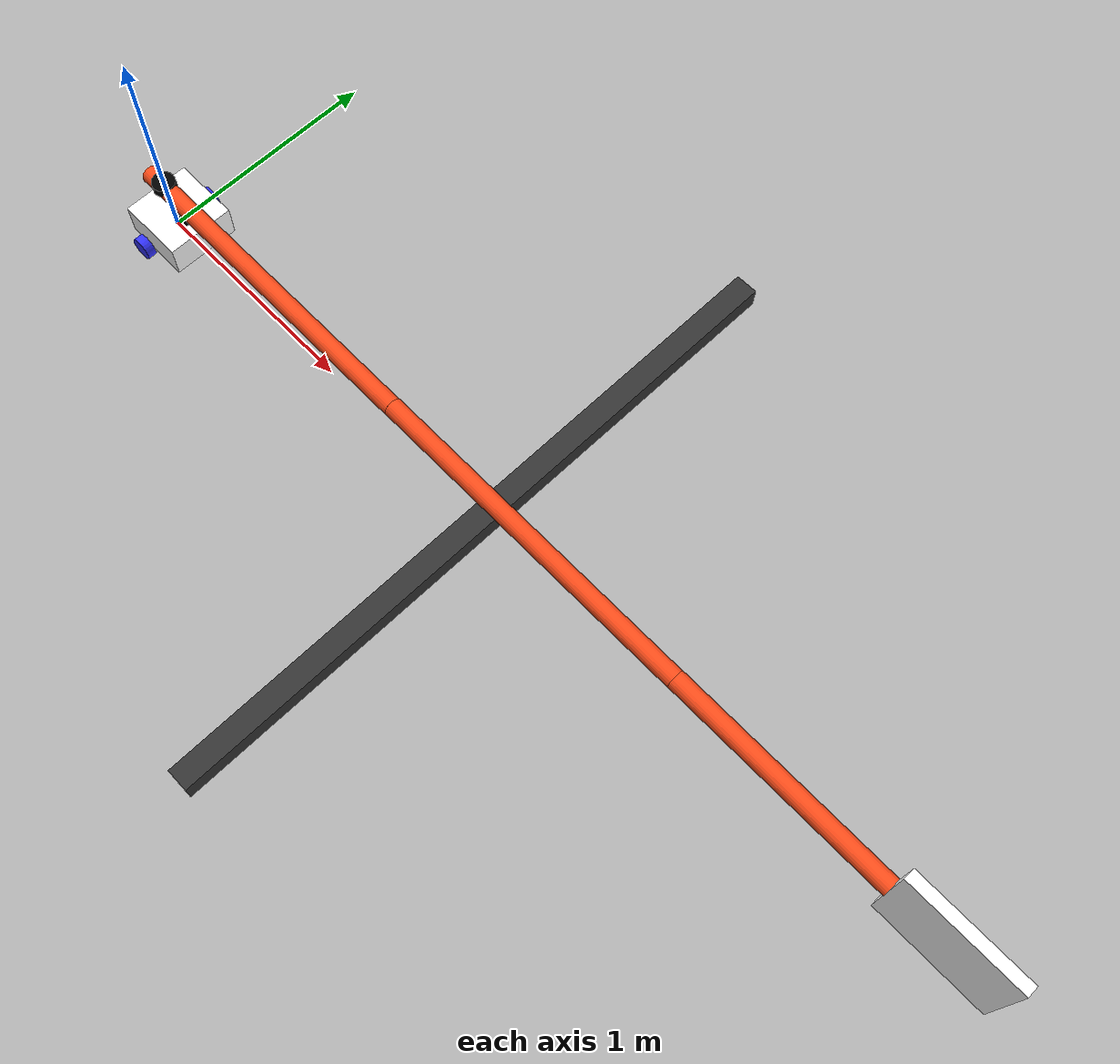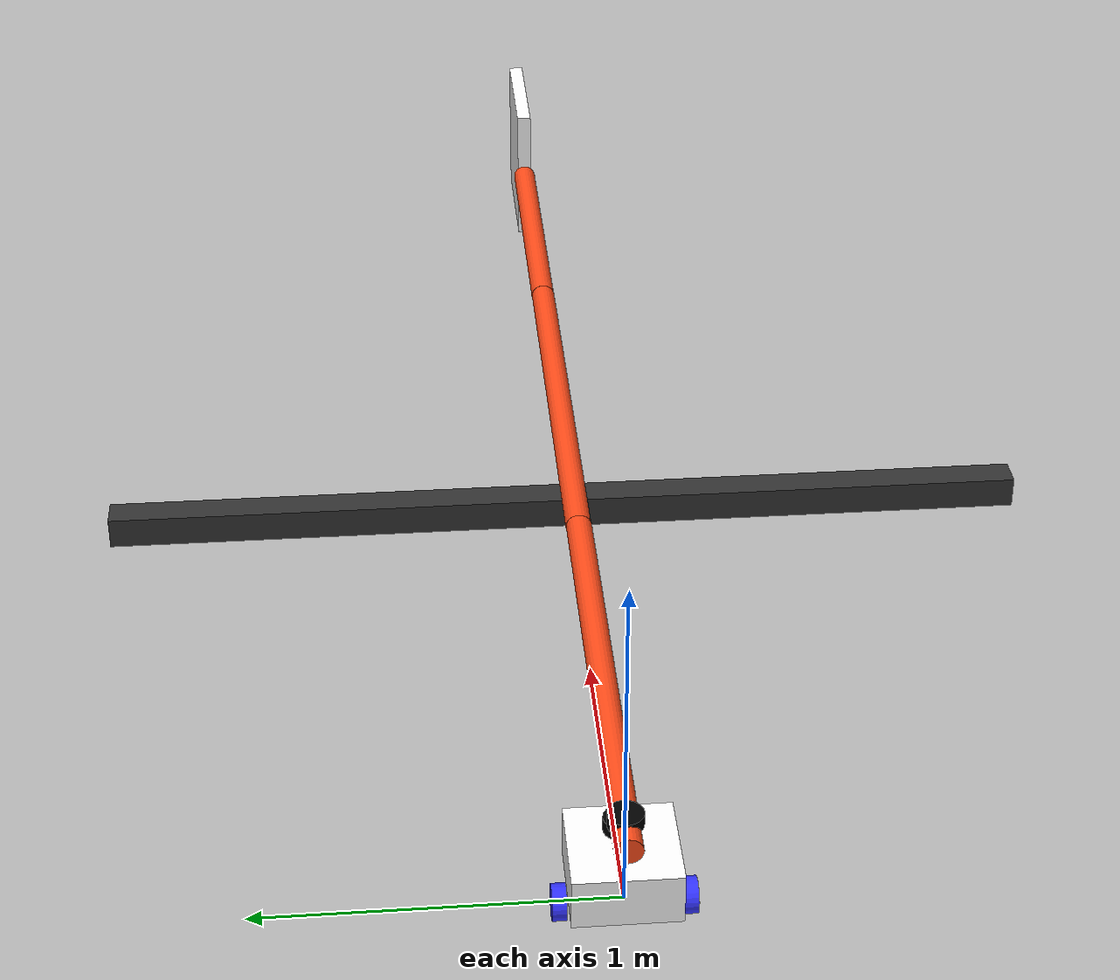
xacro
<?xml version="1.0"?>
<robot xmlns:xacro="http://www.ros.org/wiki/xacro"  name="robot">

    <xacro:include filename="robot_core.xacro" />

    <xacro:include filename="gazebo_control.xacro" />
    <xacro:include filename="lidar.xacro" />
    <xacro:include filename="camera.xacro" />
    <xacro:include filename="example_robot.urdf.xacro" />

</robot>

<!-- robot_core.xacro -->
<robot xmlns:xacro="http://www.ros.org/wiki/xacro" >

    <xacro:include filename="inertial_macros.xacro"/>

    <material name="white">
        <color rgba="1 1 1 1" />
    </material>

    <material name="orange">
        <color rgba="1 0.3 0.1 1"/>
    </material>

    <material name="blue">
        <color rgba="0.2 0.2 1 1"/>
    </material>

    <material name="black">
        <color rgba="0 0 0 1"/>
    </material>
    <material name="red">
        <color rgba="0 0 0 1"/>
    </material>
    <material name="grey">
        <color rgba="0.2 0.2 0.2 1"/>
    </material>

    <!-- BASE LINK -->

    <link name="base_link">

    </link>

    <!-- BASE_FOOTPRINT LINK -->

    <joint name="base_footprint_joint" type="fixed">
        <parent link="base_link"/>
        <child link="base_footprint"/>
        <origin xyz="0 0 0" rpy="0 0 0"/>
    </joint>

    <link name="base_footprint">
    </link>

    <!-- CHASSIS LINK -->

    <joint name="chassis_joint" type="fixed">
        <parent link="base_link"/>
        <child link="chassis"/>
        <origin xyz="-0.1 0 0"/>
    </joint>

    <link name="chassis">
        <visual>
            <origin xyz="0.15 0 0.075"/>
            <geometry>
                <box size="0.3 0.3 0.15"/>
            </geometry>
            <material name="white"/>
        </visual>
        <collision>
            <origin xyz="0.15 0 0.075"/>
            <geometry>
                <box size="0.3 0.3 0.15"/>
            </geometry>
        </collision>
        <xacro:inertial_box mass="0.5" x="0.3" y="0.3" z="0.15">
            <origin xyz="0.15 0 0.075" rpy="0 0 0"/>
        </xacro:inertial_box>
    </link>

    <gazebo reference="chassis">
        <material>Gazebo/Red</material>
    </gazebo>

    <!-- LEFT WHEEL LINK -->

    <joint name="left_wheel_joint" type="continuous">
        <parent link="base_link"/>
        <child link="left_wheel"/>
        <origin xyz="0 0.175 0" rpy="-${pi/2} 0 0" />
        <axis xyz="0 0 1"/>
    </joint>

    <link name="left_wheel">
        <visual>
            <geometry>
                <cylinder radius="0.05" length="0.04"/>
            </geometry>
            <material name="blue"/>
        </visual>
        <collision>
            <geometry>
                <cylinder radius="0.05" length="0.04"/>
            </geometry>
        </collision>
        <xacro:inertial_cylinder mass="0.1" length="0.04" radius="0.05">
            <origin xyz="0 0 0" rpy="0 0 0"/>
        </xacro:inertial_cylinder>
    </link>

    <gazebo reference="left_wheel">
        <material>Gazebo/Yellow</material>
    </gazebo>

    <!-- RIGHT WHEEL LINK -->

    <joint name="right_wheel_joint" type="continuous">
        <parent link="base_link"/>
        <child link="right_wheel"/>
        <origin xyz="0 -0.175 0" rpy="${pi/2} 0 0" />
        <axis xyz="0 0 -1"/>
    </joint>

    <link name="right_wheel">
        <visual>
            <geometry>
                <cylinder radius="0.05" length="0.04"/>
            </geometry>
            <material name="blue"/>
        </visual>
        <collision>
            <geometry>
                <cylinder radius="0.05" length="0.04"/>
            </geometry>
        </collision>
        <xacro:inertial_cylinder mass="0.1" length="0.04" radius="0.05">
            <origin xyz="0 0 0" rpy="0 0 0"/>
        </xacro:inertial_cylinder>
    </link>

    <gazebo reference="right_wheel">
        <material>Gazebo/Yellow</material>
    </gazebo>

    <!-- CASTER WHEEL LINK -->

    <joint name="caster_wheel_joint" type="fixed">
        <parent link="chassis"/>
        <child link="caster_wheel"/>
        <origin xyz="0.24 0 0"/>
    </joint>

    <link name="caster_wheel">
        <visual>
            <geometry>
                <sphere radius="0.05"/>
            </geometry>
            <material name="black"/>
        </visual>
        <collision>
            <geometry>
                <sphere radius="0.05"/>
            </geometry>
        </collision>
        <xacro:inertial_sphere mass="0.1" radius="0.05">
            <origin xyz="0 0 0" rpy="0 0 0"/>
        </xacro:inertial_sphere>
    </link>

    <gazebo reference="caster_wheel">
        <material>Gazebo/Black</material>
        <mu1 value="0.001"/>
        <mu2 value="0.001"/>
    </gazebo>

</robot>

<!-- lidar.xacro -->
<robot xmlns:xacro="http://www.ros.org/wiki/xacro"  name="robot">

    <joint name="laser_joint" type="fixed">
        <parent link="chassis"/>
        <child link="laser_frame"/>
        <origin xyz="0.1 0 0.275" rpy="0 0 0"/>
    </joint>

    <link name="laser_frame">
        <visual>
            <geometry>
                <cylinder radius="0.05" length="0.04"/>
            </geometry>
            <material name="red"/>
        </visual>
        <collision>
            <geometry>
                <cylinder radius="0.05" length="0.04"/>
            </geometry>
        </collision>
        <xacro:inertial_cylinder mass="0.1" length="0.04" radius="0.05">
            <origin xyz="0 0 0" rpy="0 0 0"/>
        </xacro:inertial_cylinder>

    </link>

    <gazebo reference="laser_frame">
        <material>Gazebo/Red</material>

        <sensor name="laser" type="ray">
            <pose> 0 0 0 0 0 0 </pose>
            <visualize>true</visualize>
            <update_rate>10</update_rate>
            <ray>
                <scan>
                    <horizontal>
                        <samples>360</samples>
                        <min_angle>-3.14</min_angle>
                        <max_angle>3.14</max_angle>
                    </horizontal>
                </scan>
                <range>
                    <min>0.3</min>
                    <max>12</max>
                </range>
            </ray>
            <plugin name="laser_controller" filename="libgazebo_ros_ray_sensor.so">
                <ros>
                    <argument>~/out:=scan</argument>
                </ros>
                <output_type>sensor_msgs/LaserScan</output_type>
                <frame_name>laser_frame</frame_name>
            </plugin>
        </sensor>
    </gazebo>

</robot>

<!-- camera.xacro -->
<robot xmlns:xacro="http://www.ros.org/wiki/xacro"  name="robot">

     <!-- First, create the link and joint for the optical frame -->

    <joint name="camera_optical_joint" type="fixed">
        <parent link="chassis"/>
       <origin xyz="0.2 0 0.175" rpy="0 0 0"/>
        <child link="camera_link" />
    </joint>

    <link name="camera_link">
        <visual>
            <geometry>
                <cylinder radius="0.05" length="0.04"/>
            </geometry>
            <material name="red"/>
        </visual>
        <collision>
            <geometry>
                <cylinder radius="0.05" length="0.04"/>
            </geometry>
        </collision>
        <xacro:inertial_cylinder mass="0.1" length="0.04" radius="0.05">
            <origin xyz="0 0 0" rpy="0 0 0"/>
        </xacro:inertial_cylinder>

    </link>

    <!-- Add a gazebo tag for the ORIGINAL camera_link (but in the plugin we reference the optical frame so that ROS can orient things correctly) -->
    <!-- Note that although visualise is set to true, it won't actually visualise the depth camera in gazebo. To see the preview,
            try swapping "depth" to "camera"-->
    <gazebo reference="camera_link">
        <sensor type="camera" name="my_camera">
            <update_rate>20</update_rate>
            <visualize>true</visualize>
            <camera name="cam">
                <horizontal_fov>1.3962634</horizontal_fov>
                <image>
                    <width>640</width>
                    <height>480</height>
                    <format>R8B8G8</format>
                </image>
                <clip>
                    <near>0.02</near>
                    <far>300</far>
                </clip>
                <noise>
                    <type>gaussian</type>
                    <mean>0.0</mean>
                    <stddev>0.007</stddev>
                </noise>
            </camera>
            <plugin name="camera_controller" filename="libgazebo_ros_camera.so">
                <frame_name>camera_link</frame_name>
                <min_depth>0.1</min_depth>
                <max_depth>500</max_depth>
            </plugin>
        </sensor>
    </gazebo>

</robot>

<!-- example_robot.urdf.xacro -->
<robot xmlns:xacro="http://www.ros.org/wiki/xacro"  name="robot">

    <joint name="world_to_base" type="fixed">
        <parent link="chassis"/>
        <child link="base" />
        <origin  rpy="1.57 0 0" xyz="0 0 0" />
    </joint>

    <link name="base">
        <visual>
            <origin xyz="2 0 0" rpy="0 0 0"/>
            <geometry>
                <box size="0.1 0.1 3" />
            </geometry>
            <material name="grey" />
        </visual>
    </link>

    <joint name="base_to_l3" type="revolute">
        <parent link="base" />
        <child link="l3" />
        <origin  rpy="0 0 0" xyz="0 0.25 0" />
        <axis rpy="0 0 0" xyz="0 0 1" />
        <limit effort="0.1" lower="-3.1" upper="3.1" velocity="0.2"/>
    </joint>

    <link name="l3">
        <visual>
            <origin xyz="0.75 0 0" rpy="0 1.57 0"/>
            <geometry>
                <cylinder length="1.5" radius="0.04" />
            </geometry>
            <material name="orange" />
        </visual>
    </link>

    <joint name="l3_to_l2" type="revolute">
        <parent link="l3" />
        <child link="l2" />
        <origin rpy="0 0 0" xyz="1.5 0 0" />
        <axis rpy="0 0 0" xyz="0 0 1" />
        <limit effort="0.1" lower="-3.1" upper="3.1" velocity="0.2"/>
    </joint>

    <link name="l2">
        <visual>
            <origin xyz="0.75 0 0" rpy="0 1.57 0"/>
            <geometry>

                <cylinder length="1.5" radius="0.04" />
            </geometry>
            <material name="orange" />
        </visual>
    </link>

    <joint name="l2_to_l1" type="revolute">
        <parent link="l2" />
        <child link="l1" />
        <origin rpy="0 0 0" xyz="1.5 0 0" />
        <axis rpy="0 0 0" xyz="0 0 1" />
        <limit effort="0.1" lower="-3.1" upper="3.1" velocity="0.2"/>
    </joint>

    <link name="l1">
        <visual>
            <origin xyz="0.5 0 0" rpy="0 1.57 0"/>
            <geometry>

                <cylinder length="1" radius="0.04" />
            </geometry>
            <material name="orange" />
        </visual>
    </link>

    <joint name="l1_to_grip" type="revolute">
        <parent link="l1" />
        <child link="grip" />
        <origin rpy="0 0 0" xyz="1 0 0" />
        <axis rpy="0 0 0" xyz="0 0 1" />
        <limit effort="0.1" lower="-3.1" upper="3.1" velocity="0.2"/>
    </joint>

    <link name="grip">
        <visual>
            <origin xyz="0.25 0 0"/>
            <geometry>
                <box size="0.5 0.5 0.05" />
            </geometry>
            <material name="white" />
        </visual>
    </link>

    <gazebo reference="base">
        <material>Gazebo/Green</material>
    </gazebo>

</robot>
